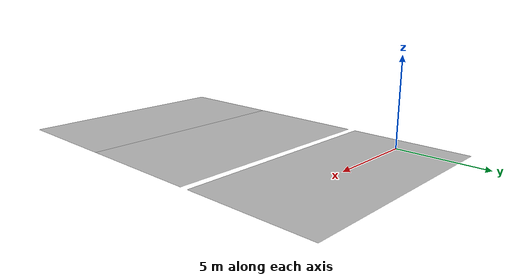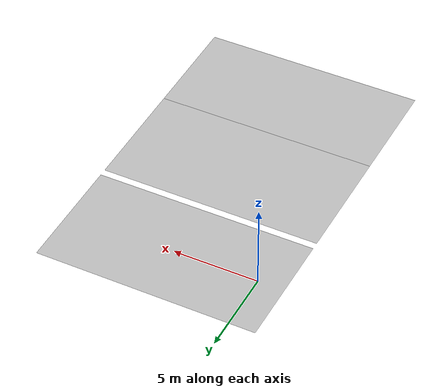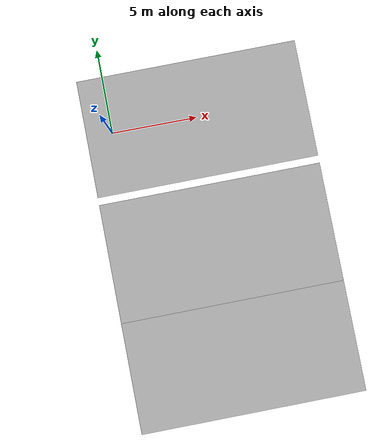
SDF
<?xml version='1.0' ?>
<sdf version='1.6'>
    <model name='simple_ground'>
    <static>true</static>
      <link name="linkG0">
      <pose>5 0 0.01  3.1410592654 0 0</pose>
      <static>true</static>
        <visual name="ground0">
        <cast_shadows>0</cast_shadows>
          <geometry>
            <mesh><uri>model://simple_ground/meshes/ground.obj</uri></mesh>
          </geometry>
        </visual>
      </link>
      <link name="linkG1">
      <pose>5 -7.4 0.01  3.1410592654 0 0</pose>
      <static>true</static>
        <visual name="ground1">
        <cast_shadows>0</cast_shadows>
          <geometry>
            <mesh><uri>model://simple_ground/meshes/ground.obj</uri></mesh>
          </geometry>
        </visual>
      </link>
      <link name="linkG2">
      <pose>5 -13.8 0.01  3.141592654 0 0</pose>
      <static>true</static>
        <visual name="ground2">
        <cast_shadows>0</cast_shadows>
          <geometry>
            <mesh><uri>model://simple_ground/meshes/ground.obj</uri></mesh>
          </geometry>
        </visual>
      </link>
    </model>
</sdf>
